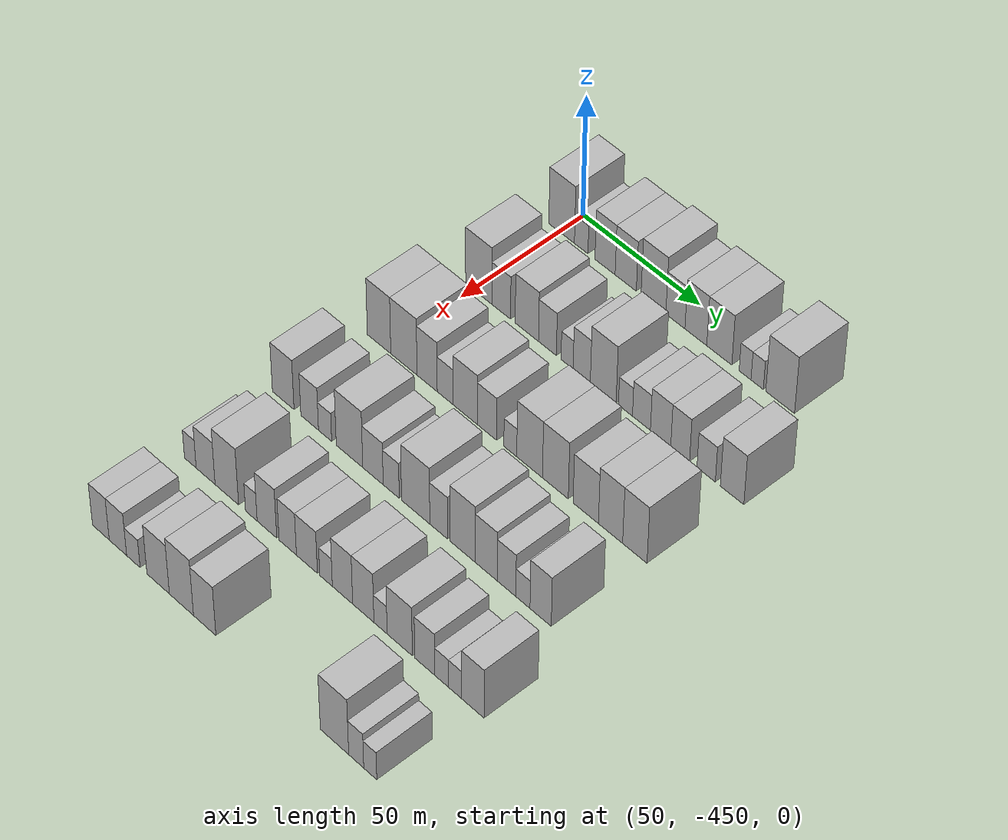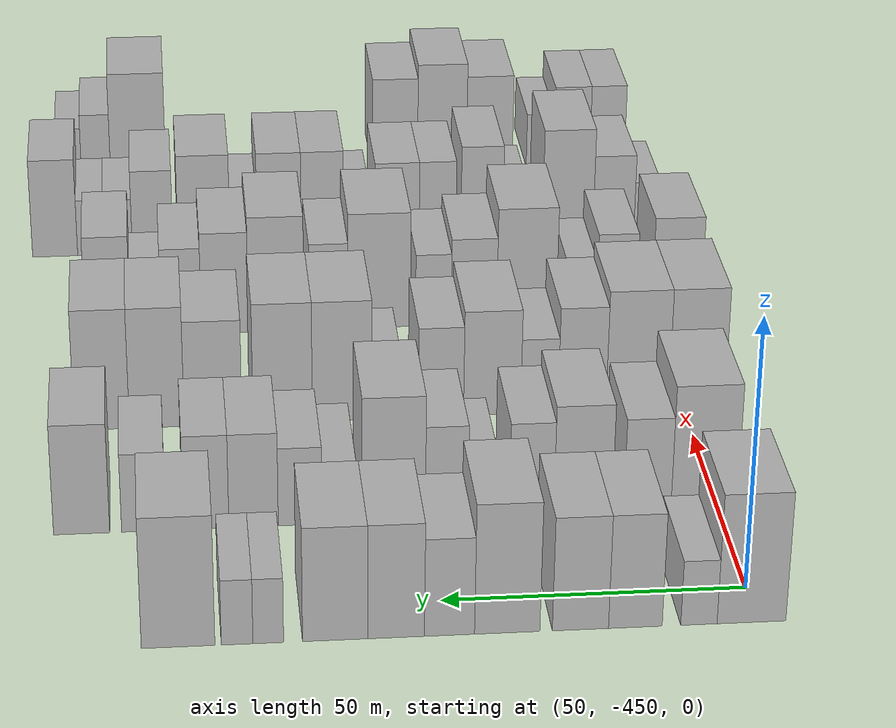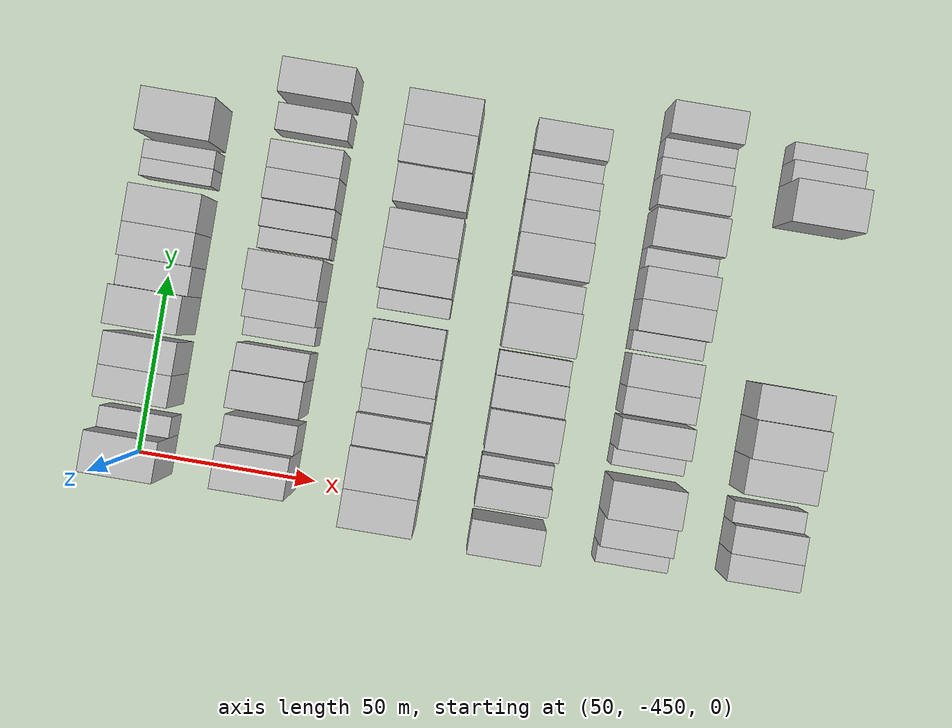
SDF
<sdf version="1.6">
 <world name="default">
  <model name="building_14">
   <static>1</static>
   <pose>50.0000 -449.0146 0 0.000000 0.000000 0.000000</pose>
   <link name="link">
    <pose>0 0 12.00 0 0 0</pose>
    <collision name="collision"><geometry><box><size>20.0000 11.1530 24.0000</size></box></geometry></collision>
    <visual name="visual">
     <cast_shadows>0</cast_shadows>
     <geometry><box><size>20.0000 11.1530 24.0000</size></box></geometry>
     <material>
      <script>
       <uri>model://HANNAS_wall/materials/scripts</uri>
       <uri>model://HANNAS_wall/materials/textures</uri>
       <name>vrc/HANNAS_wall</name>
      </script>
     </material>
    </visual>
   </link>
  </model>
  <model name="building_15">
   <static>1</static>
   <pose>50.0000 -440.5052 0 0.000000 0.000000 0.000000</pose>
   <link name="link">
    <pose>0 0 6.00 0 0 0</pose>
    <collision name="collision"><geometry><box><size>20.0000 5.8657 12.0000</size></box></geometry></collision>
    <visual name="visual">
     <cast_shadows>0</cast_shadows>
     <geometry><box><size>20.0000 5.8657 12.0000</size></box></geometry>
     <material>
      <script>
       <uri>model://HANNAS_wall/materials/scripts</uri>
       <uri>model://HANNAS_wall/materials/textures</uri>
       <name>vrc/HANNAS_wall</name>
      </script>
     </material>
    </visual>
   </link>
  </model>
  <model name="building_16">
   <static>1</static>
   <pose>50.0000 -430.2439 0 0.000000 0.000000 0.000000</pose>
   <link name="link">
    <pose>0 0 10.50 0 0 0</pose>
    <collision name="collision"><geometry><box><size>20.0000 8.6569 21.0000</size></box></geometry></collision>
    <visual name="visual">
     <cast_shadows>0</cast_shadows>
     <geometry><box><size>20.0000 8.6569 21.0000</size></box></geometry>
     <material>
      <script>
       <uri>model://HANNAS_wall/materials/scripts</uri>
       <uri>model://HANNAS_wall/materials/textures</uri>
       <name>vrc/HANNAS_wall</name>
      </script>
     </material>
    </visual>
   </link>
  </model>
  <model name="building_17">
   <static>1</static>
   <pose>50.0000 -421.3993 0 0.000000 0.000000 0.000000</pose>
   <link name="link">
    <pose>0 0 10.50 0 0 0</pose>
    <collision name="collision"><geometry><box><size>20.0000 9.0324 21.0000</size></box></geometry></collision>
    <visual name="visual">
     <cast_shadows>0</cast_shadows>
     <geometry><box><size>20.0000 9.0324 21.0000</size></box></geometry>
     <material>
      <script>
       <uri>model://HANNAS_wall/materials/scripts</uri>
       <uri>model://HANNAS_wall/materials/textures</uri>
       <name>vrc/HANNAS_wall</name>
      </script>
     </material>
    </visual>
   </link>
  </model>
  <model name="building_18">
   <static>1</static>
   <pose>50.0000 -409.6455 0 0.000000 0.000000 0.000000</pose>
   <link name="link">
    <pose>0 0 12.00 0 0 0</pose>
    <collision name="collision"><geometry><box><size>20.0000 10.4752 24.0000</size></box></geometry></collision>
    <visual name="visual">
     <cast_shadows>0</cast_shadows>
     <geometry><box><size>20.0000 10.4752 24.0000</size></box></geometry>
     <material>
      <script>
       <uri>model://HANNAS_wall/materials/scripts</uri>
       <uri>model://HANNAS_wall/materials/textures</uri>
       <name>vrc/HANNAS_wall</name>
      </script>
     </material>
    </visual>
   </link>
  </model>
  <model name="building_19">
   <static>1</static>
   <pose>50.0000 -400.4107 0 0.000000 0.000000 0.000000</pose>
   <link name="link">
    <pose>0 0 9.00 0 0 0</pose>
    <collision name="collision"><geometry><box><size>20.0000 7.9944 18.0000</size></box></geometry></collision>
    <visual name="visual">
     <cast_shadows>0</cast_shadows>
     <geometry><box><size>20.0000 7.9944 18.0000</size></box></geometry>
     <material>
      <script>
       <uri>model://HANNAS_wall/materials/scripts</uri>
       <uri>model://HANNAS_wall/materials/textures</uri>
       <name>vrc/HANNAS_wall</name>
      </script>
     </material>
    </visual>
   </link>
  </model>
  <model name="building_20">
   <static>1</static>
   <pose>50.0000 -391.8790 0 0.000000 0.000000 0.000000</pose>
   <link name="link">
    <pose>0 0 10.50 0 0 0</pose>
    <collision name="collision"><geometry><box><size>20.0000 9.0690 21.0000</size></box></geometry></collision>
    <visual name="visual">
     <cast_shadows>0</cast_shadows>
     <geometry><box><size>20.0000 9.0690 21.0000</size></box></geometry>
     <material>
      <script>
       <uri>model://HANNAS_wall/materials/scripts</uri>
       <uri>model://HANNAS_wall/materials/textures</uri>
       <name>vrc/HANNAS_wall</name>
      </script>
     </material>
    </visual>
   </link>
  </model>
  <model name="building_21">
   <static>1</static>
   <pose>50.0000 -382.1680 0 0.000000 0.000000 0.000000</pose>
   <link name="link">
    <pose>0 0 10.50 0 0 0</pose>
    <collision name="collision"><geometry><box><size>20.0000 10.3531 21.0000</size></box></geometry></collision>
    <visual name="visual">
     <cast_shadows>0</cast_shadows>
     <geometry><box><size>20.0000 10.3531 21.0000</size></box></geometry>
     <material>
      <script>
       <uri>model://HANNAS_wall/materials/scripts</uri>
       <uri>model://HANNAS_wall/materials/textures</uri>
       <name>vrc/HANNAS_wall</name>
      </script>
     </material>
    </visual>
   </link>
  </model>
  <model name="building_22">
   <static>1</static>
   <pose>50.0000 -371.5617 0 0.000000 0.000000 0.000000</pose>
   <link name="link">
    <pose>0 0 6.00 0 0 0</pose>
    <collision name="collision"><geometry><box><size>20.0000 4.8596 12.0000</size></box></geometry></collision>
    <visual name="visual">
     <cast_shadows>0</cast_shadows>
     <geometry><box><size>20.0000 4.8596 12.0000</size></box></geometry>
     <material>
      <script>
       <uri>model://HANNAS_wall/materials/scripts</uri>
       <uri>model://HANNAS_wall/materials/textures</uri>
       <name>vrc/HANNAS_wall</name>
      </script>
     </material>
    </visual>
   </link>
  </model>
  <model name="building_23">
   <static>1</static>
   <pose>50.0000 -366.6226 0 0.000000 0.000000 0.000000</pose>
   <link name="link">
    <pose>0 0 6.00 0 0 0</pose>
    <collision name="collision"><geometry><box><size>20.0000 5.0186 12.0000</size></box></geometry></collision>
    <visual name="visual">
     <cast_shadows>0</cast_shadows>
     <geometry><box><size>20.0000 5.0186 12.0000</size></box></geometry>
     <material>
      <script>
       <uri>model://HANNAS_wall/materials/scripts</uri>
       <uri>model://HANNAS_wall/materials/textures</uri>
       <name>vrc/HANNAS_wall</name>
      </script>
     </material>
    </visual>
   </link>
  </model>
  <model name="building_24">
   <static>1</static>
   <pose>50.0000 -357.2989 0 0.000000 0.000000 0.000000</pose>
   <link name="link">
    <pose>0 0 12.00 0 0 0</pose>
    <collision name="collision"><geometry><box><size>20.0000 11.6288 24.0000</size></box></geometry></collision>
    <visual name="visual">
     <cast_shadows>0</cast_shadows>
     <geometry><box><size>20.0000 11.6288 24.0000</size></box></geometry>
     <material>
      <script>
       <uri>model://HANNAS_wall/materials/scripts</uri>
       <uri>model://HANNAS_wall/materials/textures</uri>
       <name>vrc/HANNAS_wall</name>
      </script>
     </material>
    </visual>
   </link>
  </model>
  <model name="building_136">
   <static>1</static>
   <pose>85.0000 -447.5809 0 0.000000 0.000000 0.000000</pose>
   <link name="link">
    <pose>0 0 12.00 0 0 0</pose>
    <collision name="collision"><geometry><box><size>20.0000 11.3887 24.0000</size></box></geometry></collision>
    <visual name="visual">
     <cast_shadows>0</cast_shadows>
     <geometry><box><size>20.0000 11.3887 24.0000</size></box></geometry>
     <material>
      <script>
       <uri>model://HANNAS_wall/materials/scripts</uri>
       <uri>model://HANNAS_wall/materials/textures</uri>
       <name>vrc/HANNAS_wall</name>
      </script>
     </material>
    </visual>
   </link>
  </model>
  <model name="building_137">
   <static>1</static>
   <pose>85.0000 -437.8255 0 0.000000 0.000000 0.000000</pose>
   <link name="link">
    <pose>0 0 9.00 0 0 0</pose>
    <collision name="collision"><geometry><box><size>20.0000 8.1220 18.0000</size></box></geometry></collision>
    <visual name="visual">
     <cast_shadows>0</cast_shadows>
     <geometry><box><size>20.0000 8.1220 18.0000</size></box></geometry>
     <material>
      <script>
       <uri>model://HANNAS_wall/materials/scripts</uri>
       <uri>model://HANNAS_wall/materials/textures</uri>
       <name>vrc/HANNAS_wall</name>
      </script>
     </material>
    </visual>
   </link>
  </model>
  <model name="building_138">
   <static>1</static>
   <pose>85.0000 -426.7692 0 0.000000 0.000000 0.000000</pose>
   <link name="link">
    <pose>0 0 10.50 0 0 0</pose>
    <collision name="collision"><geometry><box><size>20.0000 9.9907 21.0000</size></box></geometry></collision>
    <visual name="visual">
     <cast_shadows>0</cast_shadows>
     <geometry><box><size>20.0000 9.9907 21.0000</size></box></geometry>
     <material>
      <script>
       <uri>model://HANNAS_wall/materials/scripts</uri>
       <uri>model://HANNAS_wall/materials/textures</uri>
       <name>vrc/HANNAS_wall</name>
      </script>
     </material>
    </visual>
   </link>
  </model>
  <model name="building_139">
   <static>1</static>
   <pose>85.0000 -417.9768 0 0.000000 0.000000 0.000000</pose>
   <link name="link">
    <pose>0 0 9.00 0 0 0</pose>
    <collision name="collision"><geometry><box><size>20.0000 7.5941 18.0000</size></box></geometry></collision>
    <visual name="visual">
     <cast_shadows>0</cast_shadows>
     <geometry><box><size>20.0000 7.5941 18.0000</size></box></geometry>
     <material>
      <script>
       <uri>model://HANNAS_wall/materials/scripts</uri>
       <uri>model://HANNAS_wall/materials/textures</uri>
       <name>vrc/HANNAS_wall</name>
      </script>
     </material>
    </visual>
   </link>
  </model>
  <model name="building_140">
   <static>1</static>
   <pose>85.0000 -409.6367 0 0.000000 0.000000 0.000000</pose>
   <link name="link">
    <pose>0 0 6.00 0 0 0</pose>
    <collision name="collision"><geometry><box><size>20.0000 5.0861 12.0000</size></box></geometry></collision>
    <visual name="visual">
     <cast_shadows>0</cast_shadows>
     <geometry><box><size>20.0000 5.0861 12.0000</size></box></geometry>
     <material>
      <script>
       <uri>model://HANNAS_wall/materials/scripts</uri>
       <uri>model://HANNAS_wall/materials/textures</uri>
       <name>vrc/HANNAS_wall</name>
      </script>
     </material>
    </visual>
   </link>
  </model>
  <model name="building_141">
   <static>1</static>
   <pose>85.0000 -403.4754 0 0.000000 0.000000 0.000000</pose>
   <link name="link">
    <pose>0 0 9.00 0 0 0</pose>
    <collision name="collision"><geometry><box><size>20.0000 7.2365 18.0000</size></box></geometry></collision>
    <visual name="visual">
     <cast_shadows>0</cast_shadows>
     <geometry><box><size>20.0000 7.2365 18.0000</size></box></geometry>
     <material>
      <script>
       <uri>model://HANNAS_wall/materials/scripts</uri>
       <uri>model://HANNAS_wall/materials/textures</uri>
       <name>vrc/HANNAS_wall</name>
      </script>
     </material>
    </visual>
   </link>
  </model>
  <model name="building_142">
   <static>1</static>
   <pose>85.0000 -394.4803 0 0.000000 0.000000 0.000000</pose>
   <link name="link">
    <pose>0 0 12.00 0 0 0</pose>
    <collision name="collision"><geometry><box><size>20.0000 10.7536 24.0000</size></box></geometry></collision>
    <visual name="visual">
     <cast_shadows>0</cast_shadows>
     <geometry><box><size>20.0000 10.7536 24.0000</size></box></geometry>
     <material>
      <script>
       <uri>model://HANNAS_wall/materials/scripts</uri>
       <uri>model://HANNAS_wall/materials/textures</uri>
       <name>vrc/HANNAS_wall</name>
      </script>
     </material>
    </visual>
   </link>
  </model>
  <model name="building_143">
   <static>1</static>
   <pose>85.0000 -385.2053 0 0.000000 0.000000 0.000000</pose>
   <link name="link">
    <pose>0 0 6.00 0 0 0</pose>
    <collision name="collision"><geometry><box><size>20.0000 5.7966 12.0000</size></box></geometry></collision>
    <visual name="visual">
     <cast_shadows>0</cast_shadows>
     <geometry><box><size>20.0000 5.7966 12.0000</size></box></geometry>
     <material>
      <script>
       <uri>model://HANNAS_wall/materials/scripts</uri>
       <uri>model://HANNAS_wall/materials/textures</uri>
       <name>vrc/HANNAS_wall</name>
      </script>
     </material>
    </visual>
   </link>
  </model>
  <model name="building_144">
   <static>1</static>
   <pose>85.0000 -378.6133 0 0.000000 0.000000 0.000000</pose>
   <link name="link">
    <pose>0 0 7.50 0 0 0</pose>
    <collision name="collision"><geometry><box><size>20.0000 7.3873 15.0000</size></box></geometry></collision>
    <visual name="visual">
     <cast_shadows>0</cast_shadows>
     <geometry><box><size>20.0000 7.3873 15.0000</size></box></geometry>
     <material>
      <script>
       <uri>model://HANNAS_wall/materials/scripts</uri>
       <uri>model://HANNAS_wall/materials/textures</uri>
       <name>vrc/HANNAS_wall</name>
      </script>
     </material>
    </visual>
   </link>
  </model>
  <model name="building_145">
   <static>1</static>
   <pose>85.0000 -370.7520 0 0.000000 0.000000 0.000000</pose>
   <link name="link">
    <pose>0 0 9.00 0 0 0</pose>
    <collision name="collision"><geometry><box><size>20.0000 8.3352 18.0000</size></box></geometry></collision>
    <visual name="visual">
     <cast_shadows>0</cast_shadows>
     <geometry><box><size>20.0000 8.3352 18.0000</size></box></geometry>
     <material>
      <script>
       <uri>model://HANNAS_wall/materials/scripts</uri>
       <uri>model://HANNAS_wall/materials/textures</uri>
       <name>vrc/HANNAS_wall</name>
      </script>
     </material>
    </visual>
   </link>
  </model>
  <model name="building_146">
   <static>1</static>
   <pose>85.0000 -362.7649 0 0.000000 0.000000 0.000000</pose>
   <link name="link">
    <pose>0 0 9.00 0 0 0</pose>
    <collision name="collision"><geometry><box><size>20.0000 7.6390 18.0000</size></box></geometry></collision>
    <visual name="visual">
     <cast_shadows>0</cast_shadows>
     <geometry><box><size>20.0000 7.6390 18.0000</size></box></geometry>
     <material>
      <script>
       <uri>model://HANNAS_wall/materials/scripts</uri>
       <uri>model://HANNAS_wall/materials/textures</uri>
       <name>vrc/HANNAS_wall</name>
      </script>
     </material>
    </visual>
   </link>
  </model>
  <model name="building_147">
   <static>1</static>
   <pose>85.0000 -352.2401 0 0.000000 0.000000 0.000000</pose>
   <link name="link">
    <pose>0 0 7.50 0 0 0</pose>
    <collision name="collision"><geometry><box><size>20.0000 7.4106 15.0000</size></box></geometry></collision>
    <visual name="visual">
     <cast_shadows>0</cast_shadows>
     <geometry><box><size>20.0000 7.4106 15.0000</size></box></geometry>
     <material>
      <script>
       <uri>model://HANNAS_wall/materials/scripts</uri>
       <uri>model://HANNAS_wall/materials/textures</uri>
       <name>vrc/HANNAS_wall</name>
      </script>
     </material>
    </visual>
   </link>
  </model>
  <model name="building_148">
   <static>1</static>
   <pose>85.0000 -341.8259 0 0.000000 0.000000 0.000000</pose>
   <link name="link">
    <pose>0 0 10.50 0 0 0</pose>
    <collision name="collision"><geometry><box><size>20.0000 9.4179 21.0000</size></box></geometry></collision>
    <visual name="visual">
     <cast_shadows>0</cast_shadows>
     <geometry><box><size>20.0000 9.4179 21.0000</size></box></geometry>
     <material>
      <script>
       <uri>model://HANNAS_wall/materials/scripts</uri>
       <uri>model://HANNAS_wall/materials/textures</uri>
       <name>vrc/HANNAS_wall</name>
      </script>
     </material>
    </visual>
   </link>
  </model>
  <model name="building_257">
   <static>1</static>
   <pose>120.0000 -452.4855 0 0.000000 0.000000 0.000000</pose>
   <link name="link">
    <pose>0 0 12.00 0 0 0</pose>
    <collision name="collision"><geometry><box><size>20.0000 10.2821 24.0000</size></box></geometry></collision>
    <visual name="visual">
     <cast_shadows>0</cast_shadows>
     <geometry><box><size>20.0000 10.2821 24.0000</size></box></geometry>
     <material>
      <script>
       <uri>model://HANNAS_wall/materials/scripts</uri>
       <uri>model://HANNAS_wall/materials/textures</uri>
       <name>vrc/HANNAS_wall</name>
      </script>
     </material>
    </visual>
   </link>
  </model>
  <model name="building_258">
   <static>1</static>
   <pose>120.0000 -441.6380 0 0.000000 0.000000 0.000000</pose>
   <link name="link">
    <pose>0 0 12.00 0 0 0</pose>
    <collision name="collision"><geometry><box><size>20.0000 11.4130 24.0000</size></box></geometry></collision>
    <visual name="visual">
     <cast_shadows>0</cast_shadows>
     <geometry><box><size>20.0000 11.4130 24.0000</size></box></geometry>
     <material>
      <script>
       <uri>model://HANNAS_wall/materials/scripts</uri>
       <uri>model://HANNAS_wall/materials/textures</uri>
       <name>vrc/HANNAS_wall</name>
      </script>
     </material>
    </visual>
   </link>
  </model>
  <model name="building_259">
   <static>1</static>
   <pose>120.0000 -431.5683 0 0.000000 0.000000 0.000000</pose>
   <link name="link">
    <pose>0 0 10.50 0 0 0</pose>
    <collision name="collision"><geometry><box><size>20.0000 8.7262 21.0000</size></box></geometry></collision>
    <visual name="visual">
     <cast_shadows>0</cast_shadows>
     <geometry><box><size>20.0000 8.7262 21.0000</size></box></geometry>
     <material>
      <script>
       <uri>model://HANNAS_wall/materials/scripts</uri>
       <uri>model://HANNAS_wall/materials/textures</uri>
       <name>vrc/HANNAS_wall</name>
      </script>
     </material>
    </visual>
   </link>
  </model>
  <model name="building_260">
   <static>1</static>
   <pose>120.0000 -423.8120 0 0.000000 0.000000 0.000000</pose>
   <link name="link">
    <pose>0 0 7.50 0 0 0</pose>
    <collision name="collision"><geometry><box><size>20.0000 6.7865 15.0000</size></box></geometry></collision>
    <visual name="visual">
     <cast_shadows>0</cast_shadows>
     <geometry><box><size>20.0000 6.7865 15.0000</size></box></geometry>
     <material>
      <script>
       <uri>model://HANNAS_wall/materials/scripts</uri>
       <uri>model://HANNAS_wall/materials/textures</uri>
       <name>vrc/HANNAS_wall</name>
      </script>
     </material>
    </visual>
   </link>
  </model>
  <model name="building_261">
   <static>1</static>
   <pose>120.0000 -415.2469 0 0.000000 0.000000 0.000000</pose>
   <link name="link">
    <pose>0 0 10.50 0 0 0</pose>
    <collision name="collision"><geometry><box><size>20.0000 10.3435 21.0000</size></box></geometry></collision>
    <visual name="visual">
     <cast_shadows>0</cast_shadows>
     <geometry><box><size>20.0000 10.3435 21.0000</size></box></geometry>
     <material>
      <script>
       <uri>model://HANNAS_wall/materials/scripts</uri>
       <uri>model://HANNAS_wall/materials/textures</uri>
       <name>vrc/HANNAS_wall</name>
      </script>
     </material>
    </visual>
   </link>
  </model>
  <model name="building_262">
   <static>1</static>
   <pose>120.0000 -405.9939 0 0.000000 0.000000 0.000000</pose>
   <link name="link">
    <pose>0 0 9.00 0 0 0</pose>
    <collision name="collision"><geometry><box><size>20.0000 8.1625 18.0000</size></box></geometry></collision>
    <visual name="visual">
     <cast_shadows>0</cast_shadows>
     <geometry><box><size>20.0000 8.1625 18.0000</size></box></geometry>
     <material>
      <script>
       <uri>model://HANNAS_wall/materials/scripts</uri>
       <uri>model://HANNAS_wall/materials/textures</uri>
       <name>vrc/HANNAS_wall</name>
      </script>
     </material>
    </visual>
   </link>
  </model>
  <model name="building_263">
   <static>1</static>
   <pose>120.0000 -396.2099 0 0.000000 0.000000 0.000000</pose>
   <link name="link">
    <pose>0 0 6.00 0 0 0</pose>
    <collision name="collision"><geometry><box><size>20.0000 5.4055 12.0000</size></box></geometry></collision>
    <visual name="visual">
     <cast_shadows>0</cast_shadows>
     <geometry><box><size>20.0000 5.4055 12.0000</size></box></geometry>
     <material>
      <script>
       <uri>model://HANNAS_wall/materials/scripts</uri>
       <uri>model://HANNAS_wall/materials/textures</uri>
       <name>vrc/HANNAS_wall</name>
      </script>
     </material>
    </visual>
   </link>
  </model>
  <model name="building_264">
   <static>1</static>
   <pose>120.0000 -388.1580 0 0.000000 0.000000 0.000000</pose>
   <link name="link">
    <pose>0 0 12.00 0 0 0</pose>
    <collision name="collision"><geometry><box><size>20.0000 10.6984 24.0000</size></box></geometry></collision>
    <visual name="visual">
     <cast_shadows>0</cast_shadows>
     <geometry><box><size>20.0000 10.6984 24.0000</size></box></geometry>
     <material>
      <script>
       <uri>model://HANNAS_wall/materials/scripts</uri>
       <uri>model://HANNAS_wall/materials/textures</uri>
       <name>vrc/HANNAS_wall</name>
      </script>
     </material>
    </visual>
   </link>
  </model>
  <model name="building_265">
   <static>1</static>
   <pose>120.0000 -377.4943 0 0.000000 0.000000 0.000000</pose>
   <link name="link">
    <pose>0 0 12.00 0 0 0</pose>
    <collision name="collision"><geometry><box><size>20.0000 10.6290 24.0000</size></box></geometry></collision>
    <visual name="visual">
     <cast_shadows>0</cast_shadows>
     <geometry><box><size>20.0000 10.6290 24.0000</size></box></geometry>
     <material>
      <script>
       <uri>model://HANNAS_wall/materials/scripts</uri>
       <uri>model://HANNAS_wall/materials/textures</uri>
       <name>vrc/HANNAS_wall</name>
      </script>
     </material>
    </visual>
   </link>
  </model>
  <model name="building_266">
   <static>1</static>
   <pose>120.0000 -365.0226 0 0.000000 0.000000 0.000000</pose>
   <link name="link">
    <pose>0 0 10.50 0 0 0</pose>
    <collision name="collision"><geometry><box><size>20.0000 10.3143 21.0000</size></box></geometry></collision>
    <visual name="visual">
     <cast_shadows>0</cast_shadows>
     <geometry><box><size>20.0000 10.3143 21.0000</size></box></geometry>
     <material>
      <script>
       <uri>model://HANNAS_wall/materials/scripts</uri>
       <uri>model://HANNAS_wall/materials/textures</uri>
       <name>vrc/HANNAS_wall</name>
      </script>
     </material>
    </visual>
   </link>
  </model>
  <model name="building_267">
   <static>1</static>
   <pose>120.0000 -354.9644 0 0.000000 0.000000 0.000000</pose>
   <link name="link">
    <pose>0 0 12.00 0 0 0</pose>
    <collision name="collision"><geometry><box><size>20.0000 9.8023 24.0000</size></box></geometry></collision>
    <visual name="visual">
     <cast_shadows>0</cast_shadows>
     <geometry><box><size>20.0000 9.8023 24.0000</size></box></geometry>
     <material>
      <script>
       <uri>model://HANNAS_wall/materials/scripts</uri>
       <uri>model://HANNAS_wall/materials/textures</uri>
       <name>vrc/HANNAS_wall</name>
      </script>
     </material>
    </visual>
   </link>
  </model>
  <model name="building_268">
   <static>1</static>
   <pose>120.0000 -345.1663 0 0.000000 0.000000 0.000000</pose>
   <link name="link">
    <pose>0 0 12.00 0 0 0</pose>
    <collision name="collision"><geometry><box><size>20.0000 9.7938 24.0000</size></box></geometry></collision>
    <visual name="visual">
     <cast_shadows>0</cast_shadows>
     <geometry><box><size>20.0000 9.7938 24.0000</size></box></geometry>
     <material>
      <script>
       <uri>model://HANNAS_wall/materials/scripts</uri>
       <uri>model://HANNAS_wall/materials/textures</uri>
       <name>vrc/HANNAS_wall</name>
      </script>
     </material>
    </visual>
   </link>
  </model>
  <model name="building_386">
   <static>1</static>
   <pose>155.0000 -454.7310 0 0.000000 0.000000 0.000000</pose>
   <link name="link">
    <pose>0 0 10.50 0 0 0</pose>
    <collision name="collision"><geometry><box><size>20.0000 9.5244 21.0000</size></box></geometry></collision>
    <visual name="visual">
     <cast_shadows>0</cast_shadows>
     <geometry><box><size>20.0000 9.5244 21.0000</size></box></geometry>
     <material>
      <script>
       <uri>model://HANNAS_wall/materials/scripts</uri>
       <uri>model://HANNAS_wall/materials/textures</uri>
       <name>vrc/HANNAS_wall</name>
      </script>
     </material>
    </visual>
   </link>
  </model>
  <model name="building_387">
   <static>1</static>
   <pose>155.0000 -443.1231 0 0.000000 0.000000 0.000000</pose>
   <link name="link">
    <pose>0 0 9.00 0 0 0</pose>
    <collision name="collision"><geometry><box><size>20.0000 7.6914 18.0000</size></box></geometry></collision>
    <visual name="visual">
     <cast_shadows>0</cast_shadows>
     <geometry><box><size>20.0000 7.6914 18.0000</size></box></geometry>
     <material>
      <script>
       <uri>model://HANNAS_wall/materials/scripts</uri>
       <uri>model://HANNAS_wall/materials/textures</uri>
       <name>vrc/HANNAS_wall</name>
      </script>
     </material>
    </visual>
   </link>
  </model>
  <model name="building_388">
   <static>1</static>
   <pose>155.0000 -436.4145 0 0.000000 0.000000 0.000000</pose>
   <link name="link">
    <pose>0 0 6.00 0 0 0</pose>
    <collision name="collision"><geometry><box><size>20.0000 5.7257 12.0000</size></box></geometry></collision>
    <visual name="visual">
     <cast_shadows>0</cast_shadows>
     <geometry><box><size>20.0000 5.7257 12.0000</size></box></geometry>
     <material>
      <script>
       <uri>model://HANNAS_wall/materials/scripts</uri>
       <uri>model://HANNAS_wall/materials/textures</uri>
       <name>vrc/HANNAS_wall</name>
      </script>
     </material>
    </visual>
   </link>
  </model>
  <model name="building_389">
   <static>1</static>
   <pose>155.0000 -425.8388 0 0.000000 0.000000 0.000000</pose>
   <link name="link">
    <pose>0 0 12.00 0 0 0</pose>
    <collision name="collision"><geometry><box><size>20.0000 11.4257 24.0000</size></box></geometry></collision>
    <visual name="visual">
     <cast_shadows>0</cast_shadows>
     <geometry><box><size>20.0000 11.4257 24.0000</size></box></geometry>
     <material>
      <script>
       <uri>model://HANNAS_wall/materials/scripts</uri>
       <uri>model://HANNAS_wall/materials/textures</uri>
       <name>vrc/HANNAS_wall</name>
      </script>
     </material>
    </visual>
   </link>
  </model>
  <model name="building_390">
   <static>1</static>
   <pose>155.0000 -415.7725 0 0.000000 0.000000 0.000000</pose>
   <link name="link">
    <pose>0 0 9.00 0 0 0</pose>
    <collision name="collision"><geometry><box><size>20.0000 8.7068 18.0000</size></box></geometry></collision>
    <visual name="visual">
     <cast_shadows>0</cast_shadows>
     <geometry><box><size>20.0000 8.7068 18.0000</size></box></geometry>
     <material>
      <script>
       <uri>model://HANNAS_wall/materials/scripts</uri>
       <uri>model://HANNAS_wall/materials/textures</uri>
       <name>vrc/HANNAS_wall</name>
      </script>
     </material>
    </visual>
   </link>
  </model>
  <model name="building_391">
   <static>1</static>
   <pose>155.0000 -408.0198 0 0.000000 0.000000 0.000000</pose>
   <link name="link">
    <pose>0 0 7.50 0 0 0</pose>
    <collision name="collision"><geometry><box><size>20.0000 6.7985 15.0000</size></box></geometry></collision>
    <visual name="visual">
     <cast_shadows>0</cast_shadows>
     <geometry><box><size>20.0000 6.7985 15.0000</size></box></geometry>
     <material>
      <script>
       <uri>model://HANNAS_wall/materials/scripts</uri>
       <uri>model://HANNAS_wall/materials/textures</uri>
       <name>vrc/HANNAS_wall</name>
      </script>
     </material>
    </visual>
   </link>
  </model>
  <model name="building_392">
   <static>1</static>
   <pose>155.0000 -397.6833 0 0.000000 0.000000 0.000000</pose>
   <link name="link">
    <pose>0 0 12.00 0 0 0</pose>
    <collision name="collision"><geometry><box><size>20.0000 11.8745 24.0000</size></box></geometry></collision>
    <visual name="visual">
     <cast_shadows>0</cast_shadows>
     <geometry><box><size>20.0000 11.8745 24.0000</size></box></geometry>
     <material>
      <script>
       <uri>model://HANNAS_wall/materials/scripts</uri>
       <uri>model://HANNAS_wall/materials/textures</uri>
       <name>vrc/HANNAS_wall</name>
      </script>
     </material>
    </visual>
   </link>
  </model>
  <model name="building_393">
   <static>1</static>
   <pose>155.0000 -388.0442 0 0.000000 0.000000 0.000000</pose>
   <link name="link">
    <pose>0 0 9.00 0 0 0</pose>
    <collision name="collision"><geometry><box><size>20.0000 7.4039 18.0000</size></box></geometry></collision>
    <visual name="visual">
     <cast_shadows>0</cast_shadows>
     <geometry><box><size>20.0000 7.4039 18.0000</size></box></geometry>
     <material>
      <script>
       <uri>model://HANNAS_wall/materials/scripts</uri>
       <uri>model://HANNAS_wall/materials/textures</uri>
       <name>vrc/HANNAS_wall</name>
      </script>
     </material>
    </visual>
   </link>
  </model>
  <model name="building_394">
   <static>1</static>
   <pose>155.0000 -378.0748 0 0.000000 0.000000 0.000000</pose>
   <link name="link">
    <pose>0 0 12.00 0 0 0</pose>
    <collision name="collision"><geometry><box><size>20.0000 10.5349 24.0000</size></box></geometry></collision>
    <visual name="visual">
     <cast_shadows>0</cast_shadows>
     <geometry><box><size>20.0000 10.5349 24.0000</size></box></geometry>
     <material>
      <script>
       <uri>model://HANNAS_wall/materials/scripts</uri>
       <uri>model://HANNAS_wall/materials/textures</uri>
       <name>vrc/HANNAS_wall</name>
      </script>
     </material>
    </visual>
   </link>
  </model>
  <model name="building_395">
   <static>1</static>
   <pose>155.0000 -368.3511 0 0.000000 0.000000 0.000000</pose>
   <link name="link">
    <pose>0 0 10.50 0 0 0</pose>
    <collision name="collision"><geometry><box><size>20.0000 8.9126 21.0000</size></box></geometry></collision>
    <visual name="visual">
     <cast_shadows>0</cast_shadows>
     <geometry><box><size>20.0000 8.9126 21.0000</size></box></geometry>
     <material>
      <script>
       <uri>model://HANNAS_wall/materials/scripts</uri>
       <uri>model://HANNAS_wall/materials/textures</uri>
       <name>vrc/HANNAS_wall</name>
      </script>
     </material>
    </visual>
   </link>
  </model>
  <model name="building_396">
   <static>1</static>
   <pose>155.0000 -360.0989 0 0.000000 0.000000 0.000000</pose>
   <link name="link">
    <pose>0 0 9.00 0 0 0</pose>
    <collision name="collision"><geometry><box><size>20.0000 7.5916 18.0000</size></box></geometry></collision>
    <visual name="visual">
     <cast_shadows>0</cast_shadows>
     <geometry><box><size>20.0000 7.5916 18.0000</size></box></geometry>
     <material>
      <script>
       <uri>model://HANNAS_wall/materials/scripts</uri>
       <uri>model://HANNAS_wall/materials/textures</uri>
       <name>vrc/HANNAS_wall</name>
      </script>
     </material>
    </visual>
   </link>
  </model>
  <model name="building_397">
   <static>1</static>
   <pose>155.0000 -353.4367 0 0.000000 0.000000 0.000000</pose>
   <link name="link">
    <pose>0 0 6.00 0 0 0</pose>
    <collision name="collision"><geometry><box><size>20.0000 5.7329 12.0000</size></box></geometry></collision>
    <visual name="visual">
     <cast_shadows>0</cast_shadows>
     <geometry><box><size>20.0000 5.7329 12.0000</size></box></geometry>
     <material>
      <script>
       <uri>model://HANNAS_wall/materials/scripts</uri>
       <uri>model://HANNAS_wall/materials/textures</uri>
       <name>vrc/HANNAS_wall</name>
      </script>
     </material>
    </visual>
   </link>
  </model>
  <model name="building_398">
   <static>1</static>
   <pose>155.0000 -346.2910 0 0.000000 0.000000 0.000000</pose>
   <link name="link">
    <pose>0 0 10.50 0 0 0</pose>
    <collision name="collision"><geometry><box><size>20.0000 8.5584 21.0000</size></box></geometry></collision>
    <visual name="visual">
     <cast_shadows>0</cast_shadows>
     <geometry><box><size>20.0000 8.5584 21.0000</size></box></geometry>
     <material>
      <script>
       <uri>model://HANNAS_wall/materials/scripts</uri>
       <uri>model://HANNAS_wall/materials/textures</uri>
       <name>vrc/HANNAS_wall</name>
      </script>
     </material>
    </visual>
   </link>
  </model>
  <model name="building_509">
   <static>1</static>
   <pose>190.0000 -454.6222 0 0.000000 0.000000 0.000000</pose>
   <link name="link">
    <pose>0 0 6.00 0 0 0</pose>
    <collision name="collision"><geometry><box><size>20.0000 5.1474 12.0000</size></box></geometry></collision>
    <visual name="visual">
     <cast_shadows>0</cast_shadows>
     <geometry><box><size>20.0000 5.1474 12.0000</size></box></geometry>
     <material>
      <script>
       <uri>model://HANNAS_wall/materials/scripts</uri>
       <uri>model://HANNAS_wall/materials/textures</uri>
       <name>vrc/HANNAS_wall</name>
      </script>
     </material>
    </visual>
   </link>
  </model>
  <model name="building_510">
   <static>1</static>
   <pose>190.0000 -447.8828 0 0.000000 0.000000 0.000000</pose>
   <link name="link">
    <pose>0 0 9.00 0 0 0</pose>
    <collision name="collision"><geometry><box><size>20.0000 8.3314 18.0000</size></box></geometry></collision>
    <visual name="visual">
     <cast_shadows>0</cast_shadows>
     <geometry><box><size>20.0000 8.3314 18.0000</size></box></geometry>
     <material>
      <script>
       <uri>model://HANNAS_wall/materials/scripts</uri>
       <uri>model://HANNAS_wall/materials/textures</uri>
       <name>vrc/HANNAS_wall</name>
      </script>
     </material>
    </visual>
   </link>
  </model>
  <model name="building_511">
   <static>1</static>
   <pose>190.0000 -438.5737 0 0.000000 0.000000 0.000000</pose>
   <link name="link">
    <pose>0 0 12.00 0 0 0</pose>
    <collision name="collision"><geometry><box><size>20.0000 10.2869 24.0000</size></box></geometry></collision>
    <visual name="visual">
     <cast_shadows>0</cast_shadows>
     <geometry><box><size>20.0000 10.2869 24.0000</size></box></geometry>
     <material>
      <script>
       <uri>model://HANNAS_wall/materials/scripts</uri>
       <uri>model://HANNAS_wall/materials/textures</uri>
       <name>vrc/HANNAS_wall</name>
      </script>
     </material>
    </visual>
   </link>
  </model>
  <model name="building_512">
   <static>1</static>
   <pose>190.0000 -427.9155 0 0.000000 0.000000 0.000000</pose>
   <link name="link">
    <pose>0 0 6.00 0 0 0</pose>
    <collision name="collision"><geometry><box><size>20.0000 5.0295 12.0000</size></box></geometry></collision>
    <visual name="visual">
     <cast_shadows>0</cast_shadows>
     <geometry><box><size>20.0000 5.0295 12.0000</size></box></geometry>
     <material>
      <script>
       <uri>model://HANNAS_wall/materials/scripts</uri>
       <uri>model://HANNAS_wall/materials/textures</uri>
       <name>vrc/HANNAS_wall</name>
      </script>
     </material>
    </visual>
   </link>
  </model>
  <model name="building_513">
   <static>1</static>
   <pose>190.0000 -421.1737 0 0.000000 0.000000 0.000000</pose>
   <link name="link">
    <pose>0 0 10.50 0 0 0</pose>
    <collision name="collision"><geometry><box><size>20.0000 8.4543 21.0000</size></box></geometry></collision>
    <visual name="visual">
     <cast_shadows>0</cast_shadows>
     <geometry><box><size>20.0000 8.4543 21.0000</size></box></geometry>
     <material>
      <script>
       <uri>model://HANNAS_wall/materials/scripts</uri>
       <uri>model://HANNAS_wall/materials/textures</uri>
       <name>vrc/HANNAS_wall</name>
      </script>
     </material>
    </visual>
   </link>
  </model>
  <model name="building_514">
   <static>1</static>
   <pose>190.0000 -412.2468 0 0.000000 0.000000 0.000000</pose>
   <link name="link">
    <pose>0 0 9.00 0 0 0</pose>
    <collision name="collision"><geometry><box><size>20.0000 7.3996 18.0000</size></box></geometry></collision>
    <visual name="visual">
     <cast_shadows>0</cast_shadows>
     <geometry><box><size>20.0000 7.3996 18.0000</size></box></geometry>
     <material>
      <script>
       <uri>model://HANNAS_wall/materials/scripts</uri>
       <uri>model://HANNAS_wall/materials/textures</uri>
       <name>vrc/HANNAS_wall</name>
      </script>
     </material>
    </visual>
   </link>
  </model>
  <model name="building_515">
   <static>1</static>
   <pose>190.0000 -404.0980 0 0.000000 0.000000 0.000000</pose>
   <link name="link">
    <pose>0 0 9.00 0 0 0</pose>
    <collision name="collision"><geometry><box><size>20.0000 8.8979 18.0000</size></box></geometry></collision>
    <visual name="visual">
     <cast_shadows>0</cast_shadows>
     <geometry><box><size>20.0000 8.8979 18.0000</size></box></geometry>
     <material>
      <script>
       <uri>model://HANNAS_wall/materials/scripts</uri>
       <uri>model://HANNAS_wall/materials/textures</uri>
       <name>vrc/HANNAS_wall</name>
      </script>
     </material>
    </visual>
   </link>
  </model>
  <model name="building_516">
   <static>1</static>
   <pose>190.0000 -395.9966 0 0.000000 0.000000 0.000000</pose>
   <link name="link">
    <pose>0 0 6.00 0 0 0</pose>
    <collision name="collision"><geometry><box><size>20.0000 5.3049 12.0000</size></box></geometry></collision>
    <visual name="visual">
     <cast_shadows>0</cast_shadows>
     <geometry><box><size>20.0000 5.3049 12.0000</size></box></geometry>
     <material>
      <script>
       <uri>model://HANNAS_wall/materials/scripts</uri>
       <uri>model://HANNAS_wall/materials/textures</uri>
       <name>vrc/HANNAS_wall</name>
      </script>
     </material>
    </visual>
   </link>
  </model>
  <model name="building_517">
   <static>1</static>
   <pose>190.0000 -389.0910 0 0.000000 0.000000 0.000000</pose>
   <link name="link">
    <pose>0 0 10.50 0 0 0</pose>
    <collision name="collision"><geometry><box><size>20.0000 8.5064 21.0000</size></box></geometry></collision>
    <visual name="visual">
     <cast_shadows>0</cast_shadows>
     <geometry><box><size>20.0000 8.5064 21.0000</size></box></geometry>
     <material>
      <script>
       <uri>model://HANNAS_wall/materials/scripts</uri>
       <uri>model://HANNAS_wall/materials/textures</uri>
       <name>vrc/HANNAS_wall</name>
      </script>
     </material>
    </visual>
   </link>
  </model>
  <model name="building_518">
   <static>1</static>
   <pose>190.0000 -380.4266 0 0.000000 0.000000 0.000000</pose>
   <link name="link">
    <pose>0 0 10.50 0 0 0</pose>
    <collision name="collision"><geometry><box><size>20.0000 8.8224 21.0000</size></box></geometry></collision>
    <visual name="visual">
     <cast_shadows>0</cast_shadows>
     <geometry><box><size>20.0000 8.8224 21.0000</size></box></geometry>
     <material>
      <script>
       <uri>model://HANNAS_wall/materials/scripts</uri>
       <uri>model://HANNAS_wall/materials/textures</uri>
       <name>vrc/HANNAS_wall</name>
      </script>
     </material>
    </visual>
   </link>
  </model>
  <model name="building_519">
   <static>1</static>
   <pose>190.0000 -373.2863 0 0.000000 0.000000 0.000000</pose>
   <link name="link">
    <pose>0 0 6.00 0 0 0</pose>
    <collision name="collision"><geometry><box><size>20.0000 5.4583 12.0000</size></box></geometry></collision>
    <visual name="visual">
     <cast_shadows>0</cast_shadows>
     <geometry><box><size>20.0000 5.4583 12.0000</size></box></geometry>
     <material>
      <script>
       <uri>model://HANNAS_wall/materials/scripts</uri>
       <uri>model://HANNAS_wall/materials/textures</uri>
       <name>vrc/HANNAS_wall</name>
      </script>
     </material>
    </visual>
   </link>
  </model>
  <model name="building_520">
   <static>1</static>
   <pose>190.0000 -365.3836 0 0.000000 0.000000 0.000000</pose>
   <link name="link">
    <pose>0 0 10.50 0 0 0</pose>
    <collision name="collision"><geometry><box><size>20.0000 10.3471 21.0000</size></box></geometry></collision>
    <visual name="visual">
     <cast_shadows>0</cast_shadows>
     <geometry><box><size>20.0000 10.3471 21.0000</size></box></geometry>
     <material>
      <script>
       <uri>model://HANNAS_wall/materials/scripts</uri>
       <uri>model://HANNAS_wall/materials/textures</uri>
       <name>vrc/HANNAS_wall</name>
      </script>
     </material>
    </visual>
   </link>
  </model>
  <model name="building_521">
   <static>1</static>
   <pose>190.0000 -355.1518 0 0.000000 0.000000 0.000000</pose>
   <link name="link">
    <pose>0 0 9.00 0 0 0</pose>
    <collision name="collision"><geometry><box><size>20.0000 8.1164 18.0000</size></box></geometry></collision>
    <visual name="visual">
     <cast_shadows>0</cast_shadows>
     <geometry><box><size>20.0000 8.1164 18.0000</size></box></geometry>
     <material>
      <script>
       <uri>model://HANNAS_wall/materials/scripts</uri>
       <uri>model://HANNAS_wall/materials/textures</uri>
       <name>vrc/HANNAS_wall</name>
      </script>
     </material>
    </visual>
   </link>
  </model>
  <model name="building_522">
   <static>1</static>
   <pose>190.0000 -348.2925 0 0.000000 0.000000 0.000000</pose>
   <link name="link">
    <pose>0 0 6.00 0 0 0</pose>
    <collision name="collision"><geometry><box><size>20.0000 5.6023 12.0000</size></box></geometry></collision>
    <visual name="visual">
     <cast_shadows>0</cast_shadows>
     <geometry><box><size>20.0000 5.6023 12.0000</size></box></geometry>
     <material>
      <script>
       <uri>model://HANNAS_wall/materials/scripts</uri>
       <uri>model://HANNAS_wall/materials/textures</uri>
       <name>vrc/HANNAS_wall</name>
      </script>
     </material>
    </visual>
   </link>
  </model>
  <model name="building_523">
   <static>1</static>
   <pose>190.0000 -342.8445 0 0.000000 0.000000 0.000000</pose>
   <link name="link">
    <pose>0 0 6.00 0 0 0</pose>
    <collision name="collision"><geometry><box><size>20.0000 5.2937 12.0000</size></box></geometry></collision>
    <visual name="visual">
     <cast_shadows>0</cast_shadows>
     <geometry><box><size>20.0000 5.2937 12.0000</size></box></geometry>
     <material>
      <script>
       <uri>model://HANNAS_wall/materials/scripts</uri>
       <uri>model://HANNAS_wall/materials/textures</uri>
       <name>vrc/HANNAS_wall</name>
      </script>
     </material>
    </visual>
   </link>
  </model>
  <model name="building_524">
   <static>1</static>
   <pose>190.0000 -335.7297 0 0.000000 0.000000 0.000000</pose>
   <link name="link">
    <pose>0 0 10.50 0 0 0</pose>
    <collision name="collision"><geometry><box><size>20.0000 8.9358 21.0000</size></box></geometry></collision>
    <visual name="visual">
     <cast_shadows>0</cast_shadows>
     <geometry><box><size>20.0000 8.9358 21.0000</size></box></geometry>
     <material>
      <script>
       <uri>model://HANNAS_wall/materials/scripts</uri>
       <uri>model://HANNAS_wall/materials/textures</uri>
       <name>vrc/HANNAS_wall</name>
      </script>
     </material>
    </visual>
   </link>
  </model>
  <model name="building_636">
   <static>1</static>
   <pose>225.0000 -451.8334 0 0.000000 0.000000 0.000000</pose>
   <link name="link">
    <pose>0 0 9.00 0 0 0</pose>
    <collision name="collision"><geometry><box><size>20.0000 7.4067 18.0000</size></box></geometry></collision>
    <visual name="visual">
     <cast_shadows>0</cast_shadows>
     <geometry><box><size>20.0000 7.4067 18.0000</size></box></geometry>
     <material>
      <script>
       <uri>model://HANNAS_wall/materials/scripts</uri>
       <uri>model://HANNAS_wall/materials/textures</uri>
       <name>vrc/HANNAS_wall</name>
      </script>
     </material>
    </visual>
   </link>
  </model>
  <model name="building_637">
   <static>1</static>
   <pose>225.0000 -444.3000 0 0.000000 0.000000 0.000000</pose>
   <link name="link">
    <pose>0 0 9.00 0 0 0</pose>
    <collision name="collision"><geometry><box><size>20.0000 7.6602 18.0000</size></box></geometry></collision>
    <visual name="visual">
     <cast_shadows>0</cast_shadows>
     <geometry><box><size>20.0000 7.6602 18.0000</size></box></geometry>
     <material>
      <script>
       <uri>model://HANNAS_wall/materials/scripts</uri>
       <uri>model://HANNAS_wall/materials/textures</uri>
       <name>vrc/HANNAS_wall</name>
      </script>
     </material>
    </visual>
   </link>
  </model>
  <model name="building_638">
   <static>1</static>
   <pose>225.0000 -437.5316 0 0.000000 0.000000 0.000000</pose>
   <link name="link">
    <pose>0 0 6.00 0 0 0</pose>
    <collision name="collision"><geometry><box><size>20.0000 5.8765 12.0000</size></box></geometry></collision>
    <visual name="visual">
     <cast_shadows>0</cast_shadows>
     <geometry><box><size>20.0000 5.8765 12.0000</size></box></geometry>
     <material>
      <script>
       <uri>model://HANNAS_wall/materials/scripts</uri>
       <uri>model://HANNAS_wall/materials/textures</uri>
       <name>vrc/HANNAS_wall</name>
      </script>
     </material>
    </visual>
   </link>
  </model>
  <model name="building_639">
   <static>1</static>
   <pose>225.0000 -426.7194 0 0.000000 0.000000 0.000000</pose>
   <link name="link">
    <pose>0 0 10.50 0 0 0</pose>
    <collision name="collision"><geometry><box><size>20.0000 9.7480 21.0000</size></box></geometry></collision>
    <visual name="visual">
     <cast_shadows>0</cast_shadows>
     <geometry><box><size>20.0000 9.7480 21.0000</size></box></geometry>
     <material>
      <script>
       <uri>model://HANNAS_wall/materials/scripts</uri>
       <uri>model://HANNAS_wall/materials/textures</uri>
       <name>vrc/HANNAS_wall</name>
      </script>
     </material>
    </visual>
   </link>
  </model>
  <model name="building_640">
   <static>1</static>
   <pose>225.0000 -416.6551 0 0.000000 0.000000 0.000000</pose>
   <link name="link">
    <pose>0 0 12.00 0 0 0</pose>
    <collision name="collision"><geometry><box><size>20.0000 10.3807 24.0000</size></box></geometry></collision>
    <visual name="visual">
     <cast_shadows>0</cast_shadows>
     <geometry><box><size>20.0000 10.3807 24.0000</size></box></geometry>
     <material>
      <script>
       <uri>model://HANNAS_wall/materials/scripts</uri>
       <uri>model://HANNAS_wall/materials/textures</uri>
       <name>vrc/HANNAS_wall</name>
      </script>
     </material>
    </visual>
   </link>
  </model>
  <model name="building_641">
   <static>1</static>
   <pose>225.0000 -406.6882 0 0.000000 0.000000 0.000000</pose>
   <link name="link">
    <pose>0 0 10.50 0 0 0</pose>
    <collision name="collision"><geometry><box><size>20.0000 9.5531 21.0000</size></box></geometry></collision>
    <visual name="visual">
     <cast_shadows>0</cast_shadows>
     <geometry><box><size>20.0000 9.5531 21.0000</size></box></geometry>
     <material>
      <script>
       <uri>model://HANNAS_wall/materials/scripts</uri>
       <uri>model://HANNAS_wall/materials/textures</uri>
       <name>vrc/HANNAS_wall</name>
      </script>
     </material>
    </visual>
   </link>
  </model>
  <model name="building_642">
   <static>1</static>
   <pose>225.0000 -352.5973 0 0.000000 0.000000 0.000000</pose>
   <link name="link">
    <pose>0 0 12.00 0 0 0</pose>
    <collision name="collision"><geometry><box><size>20.0000 11.5429 24.0000</size></box></geometry></collision>
    <visual name="visual">
     <cast_shadows>0</cast_shadows>
     <geometry><box><size>20.0000 11.5429 24.0000</size></box></geometry>
     <material>
      <script>
       <uri>model://HANNAS_wall/materials/scripts</uri>
       <uri>model://HANNAS_wall/materials/textures</uri>
       <name>vrc/HANNAS_wall</name>
      </script>
     </material>
    </visual>
   </link>
  </model>
  <model name="building_643">
   <static>1</static>
   <pose>225.0000 -343.7854 0 0.000000 0.000000 0.000000</pose>
   <link name="link">
    <pose>0 0 7.50 0 0 0</pose>
    <collision name="collision"><geometry><box><size>20.0000 6.0808 15.0000</size></box></geometry></collision>
    <visual name="visual">
     <cast_shadows>0</cast_shadows>
     <geometry><box><size>20.0000 6.0808 15.0000</size></box></geometry>
     <material>
      <script>
       <uri>model://HANNAS_wall/materials/scripts</uri>
       <uri>model://HANNAS_wall/materials/textures</uri>
       <name>vrc/HANNAS_wall</name>
      </script>
     </material>
    </visual>
   </link>
  </model>
  <model name="building_644">
   <static>1</static>
   <pose>225.0000 -338.1229 0 0.000000 0.000000 0.000000</pose>
   <link name="link">
    <pose>0 0 6.00 0 0 0</pose>
    <collision name="collision"><geometry><box><size>20.0000 5.2442 12.0000</size></box></geometry></collision>
    <visual name="visual">
     <cast_shadows>0</cast_shadows>
     <geometry><box><size>20.0000 5.2442 12.0000</size></box></geometry>
     <material>
      <script>
       <uri>model://HANNAS_wall/materials/scripts</uri>
       <uri>model://HANNAS_wall/materials/textures</uri>
       <name>vrc/HANNAS_wall</name>
      </script>
     </material>
    </visual>
   </link>
  </model>
 </world>
</sdf>
